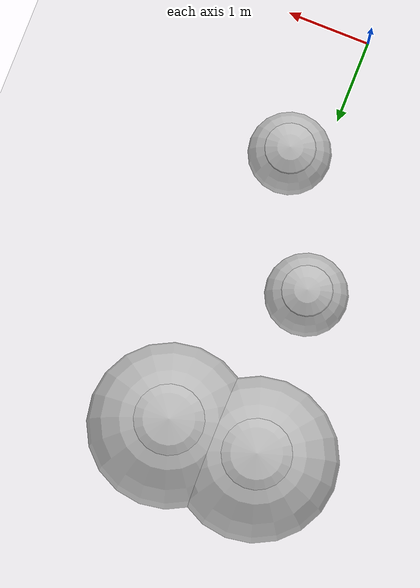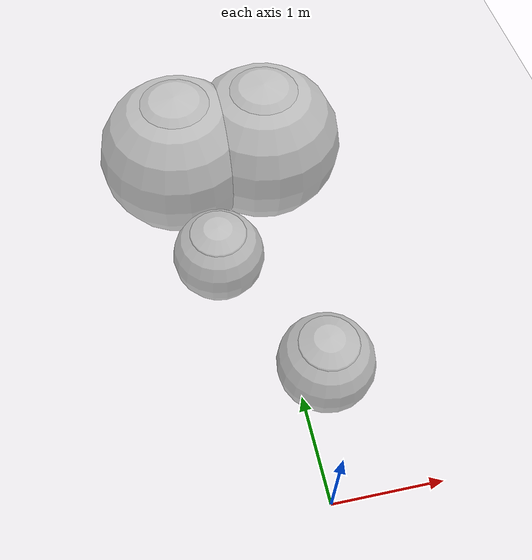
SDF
<sdf version="1.4">
 <world name="default">
  <physics type="ode">
   <gravity>0 0 -9.81</gravity>
   <max_step_size>0.001</max_step_size>
   <real_time_factor>1</real_time_factor>
  </physics>
  <include><uri>model://sun</uri></include>
  <include><uri>model://ground_plane</uri></include>
  <include><name>b1</name><uri>model://sphere_05</uri><pose>0.40 1.5 -0.4 0 0 0</pose></include>
  <include><name>b2</name><uri>model://sphere_05</uri><pose>-0.40 3 -0.4 0 0 0</pose></include>
  <include><name>b-bis-1</name><uri>model://sphere</uri><pose>-0.55 5 -0.90 0 0 0</pose></include>
  <include><name>b-bis-2</name><uri>model://sphere</uri><pose>0.55 5 -0.90 0 0 0</pose></include>
 </world>
</sdf>

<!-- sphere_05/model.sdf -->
<sdf version="1.4">

<model name="sphere_05">
	<static>true</static>
		<link name="link">

		<collision name="collision">
			<geometry>
				<sphere>
					<radius>0.5</radius>
				</sphere>
			</geometry>
		</collision>

		<visual name="visual">
			<geometry>
				<sphere>
					<radius>0.5</radius>
				</sphere>
			</geometry>
		</visual>
	</link>
</model>

</sdf>

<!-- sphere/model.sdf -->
<sdf version="1.4">

<model name="sphere">
	<static>true</static>
		<link name="link">

		<collision name="collision">
			<geometry>
				<sphere>
					<radius>1</radius>
				</sphere>
			</geometry>
		</collision>

		<visual name="visual">
			<geometry>
				<sphere>
					<radius>1</radius>
				</sphere>
			</geometry>
		</visual>
	</link>
</model>

</sdf>
